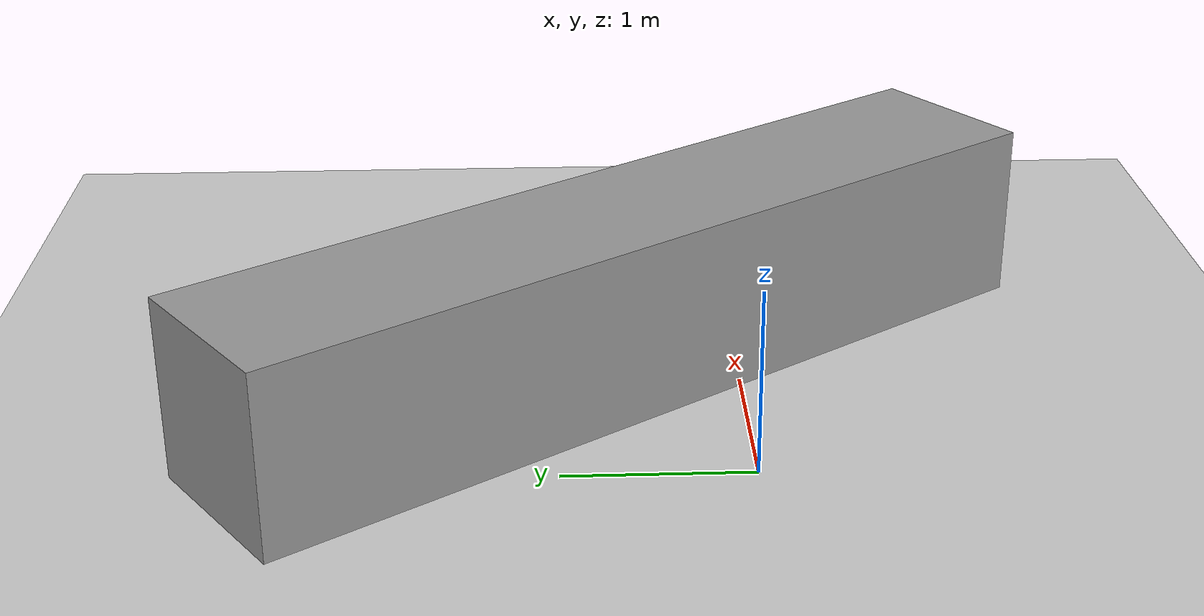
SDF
<?xml version="1.0" ?>
<sdf version="1.5">
  <world name="default">
    <!-- A global light source -->
    <include>
      <uri>model://sun</uri>
    </include>
    <!-- A ground plane -->
    <include>
      <uri>model://ground_plane</uri>
    </include>

    <model name='wall'>
      <static>true</static>
      <pose frame=''>1.107238 0.631909 0.5 0 -0 0.616289</pose>
      <link name='link'>
        <inertial>
          <mass>1</mass>
          <inertia>
            <ixx>0.166667</ixx>
            <ixy>0</ixy>
            <ixz>0</ixz>
            <iyy>0.166667</iyy>
            <iyz>0</iyz>
            <izz>0.166667</izz>
          </inertia>
        </inertial>
        <collision name='collision'>
          <geometry>
            <box>
              <size>1 5 1</size>
            </box>
          </geometry>
          <max_contacts>10</max_contacts>
          <surface>
            <contact>
              <ode/>
            </contact>
            <bounce/>
            <friction>
              <torsional>
                <ode/>
              </torsional>
              <ode/>
            </friction>
          </surface>
        </collision>
        <visual name='visual'>
          <geometry>
            <box>
              <size>1 5 1</size>
            </box>
          </geometry>
          <material>
            <script>
              <name>Gazebo/Gray</name>
              <uri>file://media/materials/scripts/gazebo.material</uri>
            </script>
          </material>
        </visual>
        <self_collide>0</self_collide>
        <kinematic>0</kinematic>
      </link>
    </model>

  </world>
</sdf>
